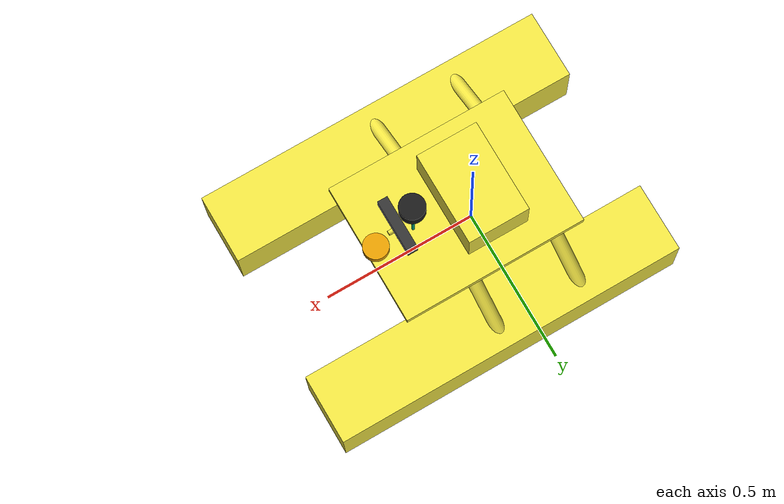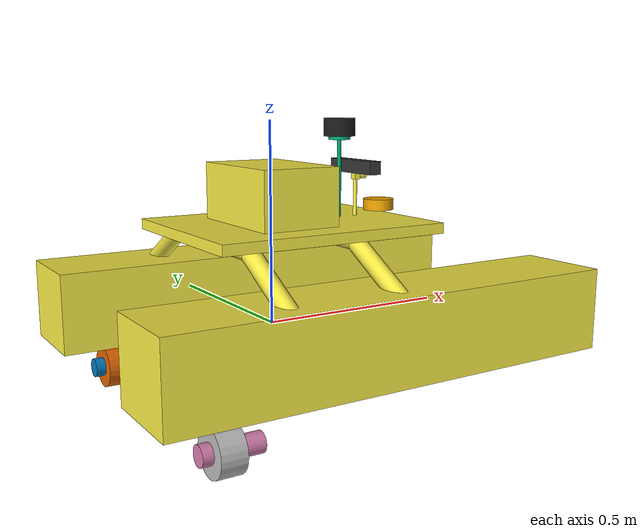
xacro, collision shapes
<?xml version="1.0"?>
<robot xmlns:xacro="http://ros.org/wiki/xacro" name="roboboat">

  <xacro:include filename="$(find workspace_gz)/description/roboboat/zed_camera.xacro"/>

  <xacro:include filename="$(find workspace_gz)/description/roboboat/rplidar_a1.xacro"/>

  <link name="base_link">

    <!-- Visual appearance of the roboboat object -->
    <visual name="visual_roboboat">
      <geometry>
        <mesh filename="file://$(find workspace_gz)/models/roboboat/meshes/roboboat.dae"/>
      </geometry>
    </visual>

    <!-- Inertia definition of the roboboat object -->
    <inertial>
      <origin xyz="0 0 -0.2" rpy="0 0 0"/>
      <mass value="10"/>
      <inertia
         ixx="0.5666666666666668" ixy="0" ixz="0"
         iyy="1.0416666666666667" iyz="0"
         izz="1.5416666666666667"/>
    </inertial>

    <!-- Collision area definition of the roboboat object -->
    <collision name="Box011">
      <origin xyz="0.110046 0.314338 0.0352701" rpy="0.0 0.0 0.0"/>
      <geometry>
        <box size="1.14985 0.223203 0.202172"/>
      </geometry>
    </collision>

    <!-- Collision area definition of the roboboat object -->
    <collision name="Box012">
      <origin xyz="0.110046 -0.31434 0.0352701" rpy="0.0 0.0 0.0"/>
      <geometry>
        <box size="1.14985 0.223203 0.202172"/>
      </geometry>
    </collision>

    <!-- Collision area definition of the roboboat object -->
    <collision name="Box013">
      <origin xyz="0.0549115 0.0 0.240029" rpy="0.0 0.0 0.0"/>
      <geometry>
        <box size="0.598409 0.459244 0.0260934"/>
      </geometry>
    </collision>

    <!-- Collision area definition of the roboboat object -->
    <collision name="Cylinder262">
      <origin xyz="-0.158378 0.290814 0.162712" rpy="1.0472 0.0 0.0"/>
      <geometry>
        <cylinder length="0.222664" radius="0.0222591"/>
      </geometry>
    </collision>

    <!-- Collision area definition of the roboboat object -->
    <collision name="Cylinder263">
      <origin xyz="-0.158378 -0.290814 0.162712" rpy="-1.0472 0.0 0.0"/>
      <geometry>
        <cylinder length="0.222664" radius="0.0222591"/>
      </geometry>
    </collision>

    <!-- Collision area definition of the roboboat object -->
    <collision name="Cylinder264">
      <origin xyz="0.12101 0.290814 0.162712" rpy="1.0472 0.0 0.0"/>
      <geometry>
        <cylinder length="0.222664" radius="0.0222591"/>
      </geometry>
    </collision>

    <!-- Collision area definition of the roboboat object -->
    <collision name="Cylinder265">
      <origin xyz="0.12101 -0.290814 0.162712" rpy="-1.0472 0.0 0.0"/>
      <geometry>
        <cylinder length="0.222664" radius="0.0222591"/>
      </geometry>
    </collision>

    <!-- Collision area definition of the roboboat object -->
    <collision name="Cylinder266">
      <origin xyz="0.12101 -0.000654578 0.21655" rpy="1.5708 0.0 0.0"/>
      <geometry>
        <cylinder length="0.409041" radius="0.0155011"/>
      </geometry>
    </collision>

    <!-- Collision area definition of the roboboat object -->
    <collision name="Cylinder267">
      <origin xyz="-0.15838 -0.000654578 0.21655" rpy="1.5708 0.0 0.0"/>
      <geometry>
        <cylinder length="0.409041" radius="0.0155011"/>
      </geometry>
    </collision>

    <!-- Visual appearance of the drybox object -->
    <visual name="visual_drybox">
      <origin xyz="0.0 0.0 0.25" rpy="0 0 0"/>
      <geometry>
        <mesh filename="file://$(find workspace_gz)/models/roboboat/sensors/drybox/meshes/drybox.dae"/>
      </geometry>
    </visual>

    <!-- Collision area definition of the drybox object -->
    <collision name="collision_drybox">
      <origin xyz="0 0 0.32" rpy="0 0 0"/>
      <geometry>
        <box size="0.2 0.3 0.15"/>
      </geometry>
    </collision>

  </link>

  <link name="left_housing_link">

    <!-- Visual appearance of the left propeller housing object -->
    <visual name="visual_left_housing">
      <geometry>
        <mesh filename="file://$(find workspace_gz)/models/roboboat/meshes/housing.dae"/>
      </geometry>
    </visual>

    <!-- Inertia definition of the left propeller housing object -->
    <inertial>
      <mass value="1.0"/>
      <inertia
        ixx="0.0020290833333333333" ixy="0.0" ixz="0.0"
        iyy="0.002408333333333333" iyz="0.0"
        izz="0.0006874166666666666" />
    </inertial>

    <!-- Visual appearance of the left mounting object -->
    <visual name="visual_left_mount">
      <origin xyz="0 0 -0.01" rpy="0 0 0"/>
      <geometry>
        <mesh filename="file://$(find workspace_gz)/models/roboboat/meshes/mount.dae"/>
      </geometry>
    </visual>

    <!-- Collision area definition of the left mounting object -->
    <collision name="Box011d">
      <origin xyz="0.0 0.0 0.100951" rpy="0 0 0"/>
      <geometry>
        <box size="0.0810453 0.0430519 0.070925"/>
      </geometry>
    </collision>

    <!-- Collision area definition of the left propeller housing object -->
    <collision name="Cylinder263d">
      <origin xyz="0.0166537 -0.00013299 0.0" rpy="1.5708 0  -1.5708"/>
      <geometry>
        <cylinder length="0.14376" radius="0.0243692"/>
      </geometry>
    </collision>

    <!-- Collision area definition of the left propeller housing object -->
    <collision name="Cylinder264d">
      <origin xyz="0.0 0.0 0.0628066" rpy="0 0 0"/>
      <geometry>
        <cylinder length="0.125613" radius="0.014703"/>
      </geometry>
    </collision>

  </link>

  <link name="left_prop_link">

    <!-- Visual appearance of the left propeller object -->
    <visual name="visual_left_prop">
      <geometry>
        <mesh filename="file://$(find workspace_gz)/models/roboboat/meshes/prop.dae"/>
      </geometry>
    </visual>

    <!-- Inertia definition of the left propeller object -->
    <inertial>
      <mass value="0.1"/>
      <inertia
        ixx="0.000105625" ixy="0.0" ixz="0.0"
        iyy="0.000105625" iyz="0.0"
        izz="0.00015125"/>
    </inertial>

    <!-- Collision area definition of the left propeller object -->
    <collision name="Cylinder262d">
      <origin xyz="0.0 0.0 0.0" rpy="1.5708 0.0 -1.5708"/>
      <geometry>
        <cylinder length="0.0608172" radius="0.0553844"/>
      </geometry>
    </collision>

  </link>

  <link name="right_housing_link">

    <!-- Visual appearance of the right propeller housing object -->
    <visual name="visual_right_housing">
      <geometry>
        <mesh filename="file://$(find workspace_gz)/models/roboboat/meshes/housing.dae"/>
      </geometry>
    </visual>

    <!-- Inertia definition of the right propeller housing object -->
    <inertial>
      <mass value="1.0"/>
      <inertia
        ixx="0.0020290833333333333" ixy="0.0" ixz="0.0"
        iyy="0.002408333333333333" iyz="0.0"
        izz="0.0006874166666666666" />
    </inertial>

    <!-- Visual appearance of the right mounting object -->
    <visual name="visual_right_mount">
      <origin xyz="0 0 -0.01" rpy="0 0 0"/>
      <geometry>
        <mesh filename="file://$(find workspace_gz)/models/roboboat/meshes/mount.dae"/>
      </geometry>
    </visual>

    <!-- Collision area definition of the right mounting object -->
    <collision name="Box011i">
      <origin xyz="0.0 0.0 0.100951" rpy="0 0 0"/>
      <geometry>
        <box size="0.0810453 0.0430519 0.070925"/>
      </geometry>
    </collision>

    <!-- Collision area definition of the right propeller housing object -->
    <collision name="Cylinder263i">
      <origin xyz="0.0166537 0.00013299 0.0" rpy="1.5708 0  -1.5708"/>
      <geometry>
        <cylinder length="0.14376" radius="0.0243692"/>
      </geometry>
    </collision>

    <!-- Collision area definition of the right propeller housing object -->
    <collision name="Cylinder264i">
      <origin xyz="0.0 0.0 0.0628066" rpy="0 0 0"/>
      <geometry>
        <cylinder length="0.125613" radius="0.014703"/>
      </geometry>
    </collision>

  </link>

  <link name="right_prop_link">

    <!-- Visual appearance of the right propeller object -->
    <visual name="visual_right_prop">
      <geometry>
        <mesh filename="file://$(find workspace_gz)/models/roboboat/meshes/prop.dae"/>
      </geometry>
    </visual>

    <!-- Inertia definition of the right propeller object -->
    <inertial>
      <mass value="0.1"/>
      <inertia
        ixx="0.000105625" ixy="0.0" ixz="0.0"
        iyy="0.000105625" iyz="0.0"
        izz="0.00015125"/>
    </inertial>

    <!-- Collision area definition of the right propeller object -->
    <collision name="Cylinder262i">
      <origin xyz="0.0 0.0 0.0" rpy="1.5708 0.0 -1.5708"/>
      <geometry>
        <cylinder length="0.0608172" radius="0.0553844"/>
      </geometry>
    </collision>

  </link>

  <link name="gps_link">

    <!-- Visual appearance of the GPS sensor -->
    <visual name="visual_gps">
      <geometry>
        <mesh filename="file://$(find workspace_gz)/models/roboboat/sensors/gps/meshes/gps.dae"/>
      </geometry>
    </visual>

    <!-- Collision area definition of the GPS sensor -->
    <collision name="collision_gps">
      <origin xyz="0.0 0.0 0.0275" rpy="0.0 0.0 0.0"/>
      <geometry>
        <cylinder length="0.0285" radius="0.04"/>
      </geometry>
    </collision>

  </link>

  <link name="imu_link">

  </link>

  <link name="lidar_link">

    <!-- Visual appearance of the LIDAR sensor -->
    <visual name="visual_lidar">
      <geometry>
        <mesh filename="file://$(find workspace_gz)/models/roboboat/sensors/lidar/meshes/lidar.dae"/>
      </geometry>
    </visual>

    <!-- Visual appearance of the LIDAR sensor post -->
    <visual name="visual_lidar_post">
      <geometry>
        <mesh filename="file://$(find workspace_gz)/models/roboboat/sensors/lidar_post/meshes/post.dae"/>
      </geometry>
    </visual>

    <!-- Collision area definition of the LIDAR sensor -->
    <collision name="collision_lidar">
      <origin xyz="0.0 0.0 0.0175" rpy="0.0 0.0 0.0"/>
      <geometry>
        <cylinder length="0.0375" radius="0.0275"/>
      </geometry>
    </collision>

    <!-- Collision area definition of the LIDAR sensor post -->
    <collision name="collision_lidar_post">
      <origin xyz="0.0 0.0 -0.1" rpy="0.0 0.0 0.0"/>
      <geometry>
        <cylinder length="0.225" radius="0.005"/>
      </geometry>
    </collision>

  </link>

  <link name="camera_link">

    <!-- Visual appearance of the CAMERA sensor -->
    <visual name="visual_camera">
      <origin xyz="-0.005 0.0 0.005" rpy="0 0 0"/>
      <geometry>
        <mesh filename="file://$(find workspace_gz)/models/roboboat/sensors/camera/meshes/camera.dae"/>
      </geometry>
    </visual>

    <!-- Visual appearance of the CAMERA sensor post -->
    <visual name="visual_camera_post">
      <origin xyz="0.0 0.0 0.0" rpy="0 0 0"/>
      <geometry>
        <mesh filename="file://$(find workspace_gz)/models/roboboat/sensors/camera_post/meshes/post.dae"/>
      </geometry>
    </visual>

    <!-- Collision area definition of the CAMERA sensor -->
    <collision name="collision_camera_1">
      <origin xyz="0.002 0.0 0.005" rpy="0 0 0"/>
      <geometry>
        <box size="0.0165 0.0165 0.0165"/>
      </geometry>
    </collision>

    <!-- Collision area definition of the CAMERA sensor -->
    <collision name="collision_camera_2">
      <origin xyz="0.02 0.0 0.005" rpy="0 1.5708 0"/>
      <geometry>
        <cylinder length="0.0225" radius="0.0075"/>
      </geometry>
    </collision>

    <!-- Collision area definition of the CAMERA sensor post -->
    <collision name="collision_camera_post">
      <origin xyz="0.0 0.0 -0.05" rpy="0.0 0.0 0.0"/>
      <geometry>
        <cylinder length="0.1" radius="0.005"/>
      </geometry>
    </collision>

  </link>

  <gazebo reference="gps_link">

    <!-- Definition of the GPS sensor -->
    <sensor name="sensor_gps" type="navsat">
      <topic>roboboat/gps/navsat</topic>
      <gz_frame_id>gps_link</gz_frame_id>
      <always_on>1</always_on>
      <update_rate>20.0</update_rate>
    </sensor>

  </gazebo>

  <gazebo reference="imu_link">

    <!-- Definition of the IMU sensor -->
    <sensor name="sensor_imu" type="imu">
      <topic>roboboat/imu/imu</topic>
      <gz_frame_id>imu_link</gz_frame_id>
      <always_on>1</always_on>
      <update_rate>50.0</update_rate>  <!-- 100?50Hz: RTF i?in yeterli -->
    </sensor>

  </gazebo>

  <!-- lidar_link is kept as a visual-only placeholder for the physical post mesh.
       The actual sensor is now defined in rplidar_a1.xacro → rplidar_a1_link. -->
  <gazebo reference="lidar_link">
    <!-- No sensor here — sensor is on rplidar_a1_link -->
  </gazebo>

  <gazebo reference="camera_link">

    <!-- Definition of the CAMERA sensor -->
    <sensor name='sensor_camera' type='camera'>
      <camera name='front_camera'>
        <horizontal_fov>1.3962634</horizontal_fov>
        <image>
          <width>1280</width>
          <height>720</height>
          <format>R8G8B8</format>
        </image>
        <clip>
          <near>0.050000000000000003</near>
          <far>400</far>
        </clip>
      </camera>
    </sensor>

  </gazebo>

  <gazebo>
    <plugin
      filename="ignition-gazebo-thruster-system"
      name="ignition::gazebo::systems::Thruster">
      <joint_name>left_housing_link_to_left_prop_link</joint_name>
      <thrust_coefficient>0.1</thrust_coefficient>
      <fluid_density>1025</fluid_density>
      <propeller_diameter>0.1</propeller_diameter>
      <velocity_control>false</velocity_control>
    </plugin>

    <plugin
      filename="ignition-gazebo-thruster-system"
      name="ignition::gazebo::systems::Thruster">
      <joint_name>right_housing_link_to_right_prop_link</joint_name>
      <thrust_coefficient>0.1</thrust_coefficient>
      <fluid_density>1025</fluid_density>
      <propeller_diameter>0.1</propeller_diameter>
      <velocity_control>false</velocity_control>
    </plugin>

    <plugin
      filename="libSurface.so"
      name="vrx::Surface">
      <link_name>base_link</link_name>
      <hull_length>1.15</hull_length>
      <hull_radius>0.12</hull_radius>
      <fluid_level>0.075</fluid_level>
      <points>
        <point>0.68 0.314338 0.0352701</point>
        <point>-0.465 0.314338 0.0352701</point>
      </points>
      <wavefield>
        <topic>/vrx/wavefield/parameters</topic>
      </wavefield>
    </plugin>

    <plugin
      filename="libSurface.so"
      name="vrx::Surface">
      <link_name>base_link</link_name>
      <hull_length>1.15</hull_length>
      <hull_radius>0.12</hull_radius>
      <fluid_level>0.075</fluid_level>
      <points>
        <point>0.68 -0.314338 0.0352701</point>
        <point>-0.465 -0.314338 0.0352701</point>
      </points>
      <wavefield>
        <topic>/vrx/wavefield/parameters</topic>
      </wavefield>
    </plugin>

    <plugin
      filename="libSimpleHydrodynamics.so"
      name="vrx::SimpleHydrodynamics">
      <link_name>base_link</link_name>

      <xDotU>0.0</xDotU>
      <yDotV>0.0</yDotV>
      <nDotR>0.0</nDotR>

      <xU>4.0</xU>
      <xUU>6.0</xUU>
      <yV>4.0</yV>
      <yVV>4.0</yVV>
      <zW>20.0</zW>
      <kP>12.0</kP>
      <kPP>24.0</kPP>
      <mQ>36.0</mQ>
      <mQQ>35.0</mQQ>
      <nR>32.0</nR>
      <nRR>32.0</nRR>
    </plugin>

    <plugin
      filename="libArduPilotPlugin.so"
      name="ArduPilotPlugin">

      <!-- IMU: xacro'daki sensor adıyla eşleşmeli (satır 437) -->
      <imuName>sensor_imu</imuName>
      <imuTopicName>/roboboat/imu/imu</imuTopicName>

      <!-- SITL UDP -->
      <fdm_addr>127.0.0.1</fdm_addr>
      <fdm_port_in>9002</fdm_port_in>
      <fdm_port_out>9003</fdm_port_out>

      <!-- Bağlantı zaman aşımı -->
      <connectionTimeoutMaxCount>5</connectionTimeoutMaxCount>

      <!-- Kontrol döngüsü frekansı -->
      <control_hz>400</control_hz>

      <!-- Araç çerçevesi → NED dönüşümü -->
      <modelXYZToAirplaneXForwardZDown>0 0 0 3.141593 0 0</modelXYZToAirplaneXForwardZDown>
      <gazeboXYZToNED>0 0 0 3.141593 0 0</gazeboXYZToNED>

      <!-- ── Sol Motor (SERVO1 = channel 0) ── -->
      <control channel="0">
        <jointName>left_housing_link_to_left_prop_link</jointName>
        <useForce>1</useForce>
        <multiplier>150</multiplier>
        <offset>0</offset>
        <servo_min>1100</servo_min>
        <servo_max>1900</servo_max>
        <type>EFFORT</type>
      </control>

      <!-- ── Sağ Motor (SERVO3 = channel 2) ── -->
      <control channel="2">
        <jointName>right_housing_link_to_right_prop_link</jointName>
        <useForce>1</useForce>
        <multiplier>150</multiplier>
        <offset>0</offset>
        <servo_min>1100</servo_min>
        <servo_max>1900</servo_max>
        <type>EFFORT</type>
      </control>

    </plugin>

  </gazebo>

  <joint name="base_link_to_gps_link" type="fixed">
    <origin xyz="0.325 0 0.25" rpy="0 0 0"/>
    <parent link="base_link"/>
    <child  link="gps_link"/>
  </joint>

  <joint name="base_link_to_imu_link" type="fixed">
    <origin xyz="0.325 0 0.25" rpy="0 0 0"/>
    <parent link="base_link"/>
    <child  link="imu_link"/>
  </joint>

  <joint name="base_link_to_lidar_link" type="fixed">
    <origin xyz="0.2 0.0 0.45" rpy="0 0 0"/>
    <parent link="base_link"/>
    <child  link="lidar_link"/>
  </joint>

  <joint name="base_link_to_camera_link" type="fixed">
    <origin xyz="0.25 0.0 0.35" rpy="0 0 0"/>
    <parent link="base_link"/>
    <child  link="camera_link"/>
  </joint>

  <joint name="base_link_to_left_housing_link" type="fixed">
    <origin xyz="-0.3 0.33 -0.15" rpy="0 0 0"/>
    <parent link="base_link"/>
    <child  link="left_housing_link"/>
  </joint>

  <joint name="left_housing_link_to_left_prop_link" type="revolute">
    <origin xyz="0 0 0" rpy="0 0 0"/>
    <parent link="left_housing_link"/>
    <child link="left_prop_link"/>
    <axis xyz="1 0 0"/>
    <limit effort="10" velocity="10" lower="-3.14" upper="3.14"/>
    <dynamics damping="0.01" friction="0.01"/>
  </joint>

  <joint name="base_link_to_right_housing_link" type="fixed">
    <origin xyz="-0.3 -0.33 -0.15" rpy="0 0 0"/>
    <parent link="base_link"/>
    <child  link="right_housing_link"/>
  </joint>

  <joint name="right_housing_link_to_right_prop_link" type="revolute">
    <origin xyz="0 0 0" rpy="0 0 0"/>
    <parent link="right_housing_link"/>
    <child link="right_prop_link"/>
    <axis xyz="1 0 0"/>
    <limit effort="10" velocity="10" lower="-3.14" upper="3.14"/>
    <dynamics damping="0.01" friction="0.01"/>
  </joint>

  <joint name="base_link_to_zed_camera_link" type="fixed">
    <origin xyz="0.25 0.0 0.38" rpy="0 0 0"/>
    <parent link="base_link"/>
    <child  link="zed_camera_link"/>
  </joint>

  <joint name="base_link_to_rplidar_a1_link" type="fixed">
    <origin xyz="0.2 0.0 0.48" rpy="0 0 0"/>
    <parent link="base_link"/>
    <child  link="rplidar_a1_link"/>
  </joint>

  <gazebo>
    <plugin filename="ignition-gazebo-odometry-publisher-system"
            name="ignition::gazebo::systems::OdometryPublisher">
      <!-- Gürültüsüz ground-truth odometri (simülasyon-gerçeklik farkını kapatır) -->
      <odom_topic>/roboboat/zed/odom</odom_topic>
      <robot_base_frame>base_link</robot_base_frame>
      <odom_frame>odom</odom_frame>
      <!-- 30 Hz — ZED 1.0 odometri çıkış hızıyla eşleştirildi -->
      <odom_publish_frequency>30</odom_publish_frequency>
    </plugin>
  </gazebo>

</robot>

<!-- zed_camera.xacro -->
<robot xmlns:xacro="http://ros.org/wiki/xacro">

  <link name="zed_camera_link">

    <visual name="visual_zed_camera_body">
      <origin xyz="0.0 0.0 0.0" rpy="0 0 0"/>
      <geometry>
        <!-- ZED 1.0 fiziksel g?vdesi: 175 mm geni?lik, 30 mm derinlik, 33 mm y?kseklik -->
        <box size="0.030 0.175 0.033"/>
      </geometry>
      <material name="zed_dark_grey">
        <color rgba="0.2 0.2 0.2 1.0"/>
      </material>
    </visual>

    <!--
      Sol Lens Dairesi ? sadece g?rsel
    -->
    <visual name="visual_zed_lens_left">
      <origin xyz="0.015 0.030 0.0" rpy="1.5707963 0.0 0.0"/>
      <geometry>
        <cylinder length="0.005" radius="0.010"/>
      </geometry>
      <material name="zed_lens_glass">
        <color rgba="0.1 0.1 0.3 0.8"/>
      </material>
    </visual>

    <!--
      Sa? Lens Dairesi ? sadece g?rsel
      Not: baseline=0.12 m ? sol lens +0.06 m, sa? lens -0.06 m Y ekseninde
    -->
    <visual name="visual_zed_lens_right">
      <origin xyz="0.015 -0.030 0.0" rpy="1.5707963 0.0 0.0"/>
      <geometry>
        <cylinder length="0.005" radius="0.010"/>
      </geometry>
      <material name="zed_lens_glass">
        <color rgba="0.1 0.1 0.3 0.8"/>
      </material>
    </visual>

    <!-- ?arp??ma Alan?: ZED 1.0 g?vde kutusu -->
    <collision name="collision_zed_camera">
      <origin xyz="0.0 0.0 0.0" rpy="0 0 0"/>
      <geometry>
        <box size="0.033 0.175 0.033"/>
      </geometry>
    </collision>

    <inertial>
      <origin xyz="0.0 0.0 0.0" rpy="0 0 0"/>
      <mass value="0.16"/>
      <inertia
        ixx="0.000422" ixy="0.0" ixz="0.0"
        iyy="0.0000265" iyz="0.0"
        izz="0.000420"/>
    </inertial>

  </link>

  <link name="zed_camera_optical_frame">
    <!-- Optik frame k?tlesiz ve geometrisiz bir referans ?er?evesidir -->
  </link>

  <!--
    Optik Frame Joint'i:
    zed_camera_link ? zed_camera_optical_frame
    rpy = (-?/2, 0, -?/2) ile Gazebo'dan OpenCV koordinat sistemine ge?i?.
  -->
  <joint name="zed_camera_link_to_optical_frame" type="fixed">
    <origin xyz="0.0 0.0 0.0" rpy="-1.5707963267948966 0.0 -1.5707963267948966"/>
    <parent link="zed_camera_link"/>
    <child  link="zed_camera_optical_frame"/>
  </joint>

  <gazebo reference="zed_camera_link">

    <sensor name="sensor_zed_camera" type="rgbd_camera">

      <!-- ?? Ignition Topic Adlar? ????????????????????????
           Bu topic'ler ros_gz_bridge arac?l???yla ROS 2'ye k?pr?lenir.
           K?pr? yap?land?rmas? i?in bkz. dosya ba??ndaki tablo.
      -->
      <topic>/roboboat/sensors/camera/image</topic>

      <!-- G?r?nt? her zaman yay?nlan?r (g?? tasarruf modu yok) -->
      <always_on>true</always_on>

      <!-- visualize=false: Gazebo GUI'de depth overlay render edilmez → GPU boşaltılır.
           RViz2'de görüntülemek için bridge topic'leri kullan. -->
      <visualize>false</visualize>

      <update_rate>10</update_rate>

      <ignition_frame_id>zed_camera_link</ignition_frame_id>
      <gz_frame_id>zed_camera_link</gz_frame_id>

      <camera name="zed_1_camera">

        <image>
          <width>320</width>
          <height>180</height>
          <!-- R8G8B8: 8-bit/kanal, sensorMsg/Image encoding="rgb8" -->
          <format>R8G8B8</format>
        </image>

        <!-- ?? G?r?? A??s? (Field of View) ?????????????
             ZED 1.0 @ 720p: Yatay FOV = 110? = 1.91986 rad
             Kaynak: Stereolabs resmi datasheet
        -->
        <horizontal_fov>1.91986</horizontal_fov>

        <clip>
          <near>0.5</near>
          <far>20.0</far>
        </clip>

        <depth_camera>
          <output>depths</output>
          <!-- Derinlik g?r?nt?s? i?in yak?n/uzak s?n?rlar -->
          <clip>
            <near>0.5</near>
            <far>20.0</far>
          </clip>
        </depth_camera>

        <!-- ?? G?r?nt? G?r?lt?s? (Noise) ?????????????????
             ZED 1.0 tipik RGB kamera g?r?lt?s? modeli:
             Gaussian g?r?lt?, stddev=0.007 (27/255 ? %1)
        -->
        <noise>
          <type>gaussian</type>
          <mean>0.0</mean>
          <stddev>0.007</stddev>
        </noise>

        <distortion>
          <k1>0.0</k1>
          <k2>0.0</k2>
          <k3>0.0</k3>
          <p1>0.0</p1>
          <p2>0.0</p2>
          <center>0.5 0.5</center>
        </distortion>

        <!-- ?? Lens ?zellikleri ??????????????????????????
             ZED 1.0 lens tipi: Pinhole (ideal, bozulmas?z model)
             Ger?ek lens bozulmas? ihmal edilir (ZED SDK d?zeltir).
        -->
        <lens>
          <type>stereographic</type>
          <scale_to_hfov>true</scale_to_hfov>
        </lens>

      </camera>

    </sensor>

  </gazebo>

</robot>

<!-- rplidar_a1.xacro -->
<!-- RPLidar A1M8 — 2D LiDAR Xacro (Ignition Gazebo Fortress)    -->
<!-- Hardware Spec (Real Sensor):                                  -->
<!--   Horizontal FOV  : 360°, 360 samples (1°/beam)             -->
<!--   Vertical Channels: 1  ← Pure 2D laser plane               -->
<!--   Min Range       : 0.15 m                                   -->
<!--   Max Range       : 8.0 m                                    -->
<!--   Update Rate     : 5.5 Hz                                   -->
<!--   Noise           : Gaussian σ = 0.01 m                      -->
<!-- ROS 2 Bridge (add to simulation.launch.py):                  -->
<!--   /roboboat/sensors/lidar/scan                               -->
<!--   @sensor_msgs/msg/LaserScan                                 -->
<!--   [ignition.msgs.LaserScan                                   -->
<!-- Published Topic: /scan  (after remapping in bridge)          -->

<robot xmlns:xacro="http://ros.org/wiki/xacro">

  <!--  Physical link — RPLidar A1M8 body (cylindrical housing)  -->
  <!--  Dimensions: ∅77mm × 41mm, mass: 170g                    -->
  <link name="rplidar_a1_link">

    <!-- Visual: cylindrical base body -->
    <visual name="visual_rplidar_body">
      <origin xyz="0.0 0.0 0.0" rpy="0 0 0"/>
      <geometry>
        <cylinder length="0.041" radius="0.0385"/>
      </geometry>
      <material name="rplidar_black">
        <color rgba="0.1 0.1 0.1 1.0"/>
      </material>
    </visual>

    <!-- Visual: rotating scan head (top disc) -->
    <visual name="visual_rplidar_head">
      <origin xyz="0.0 0.0 0.025" rpy="0 0 0"/>
      <geometry>
        <cylinder length="0.010" radius="0.022"/>
      </geometry>
      <material name="rplidar_dark_grey">
        <color rgba="0.3 0.3 0.3 1.0"/>
      </material>
    </visual>

    <!-- Collision geometry -->
    <collision name="collision_rplidar">
      <origin xyz="0.0 0.0 0.0" rpy="0.0 0.0 0.0"/>
      <geometry>
        <cylinder length="0.045" radius="0.040"/>
      </geometry>
    </collision>

    <!-- Inertia: m=0.17kg, r=0.0385m, h=0.041m -->
    <inertial>
      <origin xyz="0.0 0.0 0.0" rpy="0 0 0"/>
      <mass value="0.17"/>
      <inertia
        ixx="0.0001063" ixy="0.0" ixz="0.0"
        iyy="0.0001063" iyz="0.0"
        izz="0.0001261"/>
    </inertial>

  </link>

  <!--  Ignition Gazebo gpu_lidar sensor definition             -->
  <!--  This single vertical sample creates a PURE 2D laser     -->
  <!--  plane. The plugin outputs sensor_msgs/LaserScan         -->
  <!--  (not PointCloud2) when vertical samples == 1.           -->
  <gazebo reference="rplidar_a1_link">

    <sensor name="sensor_rplidar_a1" type="gpu_lidar">

      <!-- Ignition topic. ros_gz_bridge maps this to /scan -->
      <topic>/roboboat/sensors/lidar/scan</topic>

      <!-- TF frame for the scan header -->
      <gz_frame_id>rplidar_a1_link</gz_frame_id>

      <always_on>true</always_on>
      <visualize>true</visualize>

      <!-- RPLidar A1M8 nominal scan rate: 5.5 Hz -->
      <update_rate>5.5</update_rate>

      <ray>
        <scan>

          <!-- ── Horizontal: 360° full sweep, 360 beams ── -->
          <!-- Resolution: 1°/beam  →  samples=360         -->
          <horizontal>
            <samples>360</samples>
            <resolution>1</resolution>
            <min_angle>-3.14159265358979</min_angle>
            <max_angle>3.14159265358979</max_angle>
          </horizontal>

          <!-- ── Vertical: EXACTLY 1 sample ─────────────── -->
          <!-- This collapses the 3D ray-cast into a single  -->
          <!-- horizontal plane → pure 2D LaserScan output.  -->
          <!-- min_angle == max_angle == 0 ensures the plane -->
          <!-- is perfectly horizontal (no tilt).            -->
          <vertical>
            <samples>1</samples>
            <resolution>1</resolution>
            <min_angle>0.0</min_angle>
            <max_angle>0.0</max_angle>
          </vertical>

        </scan>

        <range>
          <!-- RPLidar A1M8 blind zone: 0.15 m -->
          <min>0.15</min>
          <!-- RPLidar A1M8 max range: 8.0 m (indoor/low-reflectivity) -->
          <max>8.0</max>
          <!-- 1 cm range resolution -->
          <resolution>0.01</resolution>
        </range>

        <!-- Gaussian noise: A1M8 typical ±1 cm accuracy -->
        <noise>
          <type>gaussian</type>
          <mean>0.0</mean>
          <stddev>0.01</stddev>
        </noise>

      </ray>

    </sensor>

  </gazebo>

</robot>
